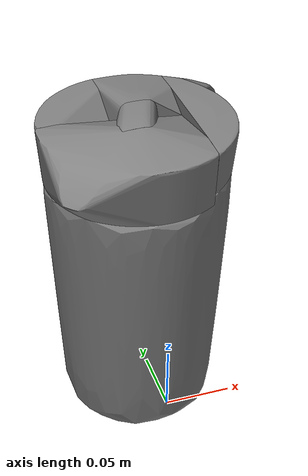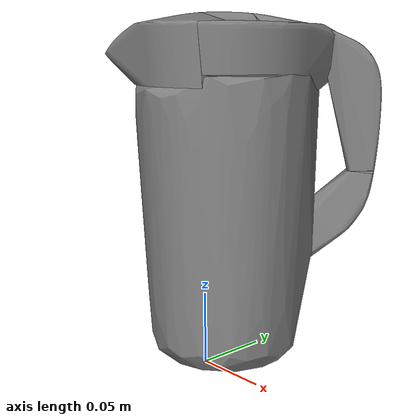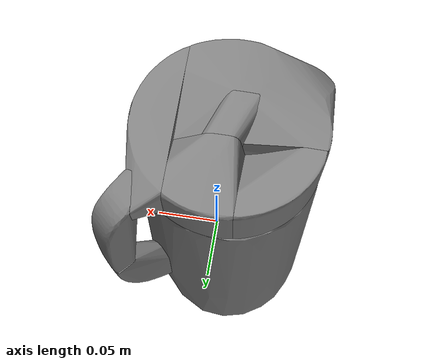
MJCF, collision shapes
<mujoco model="ycb_019_pitcher_base">
  <compiler meshdir="meshes" texturedir="meshes" angle="radian"/>
  <default>
    <default class="visual"><geom contype="0" conaffinity="0" group="2" density="0"/></default>
    <default class="collision"><geom group="3"/></default>
  </default>
  <asset>
    <texture name="ycb_019_pitcher_base_tex" type="2d" file="ycb_019_pitcher_base_texture.png"/>
    <material name="ycb_019_pitcher_base_mat" texture="ycb_019_pitcher_base_tex" specular="0.2" shininess="0.3"/>
    <mesh name="ycb_019_pitcher_base_visual" file="ycb_019_pitcher_base_visual.obj"/>
    <mesh name="ycb_019_pitcher_base_hull0" file="ycb_019_pitcher_base_hull0.obj"/>
    <mesh name="ycb_019_pitcher_base_hull1" file="ycb_019_pitcher_base_hull1.obj"/>
    <mesh name="ycb_019_pitcher_base_hull2" file="ycb_019_pitcher_base_hull2.obj"/>
    <mesh name="ycb_019_pitcher_base_hull3" file="ycb_019_pitcher_base_hull3.obj"/>
    <mesh name="ycb_019_pitcher_base_hull4" file="ycb_019_pitcher_base_hull4.obj"/>
    <mesh name="ycb_019_pitcher_base_hull5" file="ycb_019_pitcher_base_hull5.obj"/>
    <mesh name="ycb_019_pitcher_base_hull6" file="ycb_019_pitcher_base_hull6.obj"/>
    <mesh name="ycb_019_pitcher_base_hull7" file="ycb_019_pitcher_base_hull7.obj"/>
  </asset>
  <worldbody>
    <body name="object" pos="0 0 0">
      <freejoint name="object_free"/>
      <geom type="mesh" mesh="ycb_019_pitcher_base_visual" material="ycb_019_pitcher_base_mat" class="visual"/>
      <geom type="mesh" mesh="ycb_019_pitcher_base_hull0" class="collision"/>
      <geom type="mesh" mesh="ycb_019_pitcher_base_hull1" class="collision"/>
      <geom type="mesh" mesh="ycb_019_pitcher_base_hull2" class="collision"/>
      <geom type="mesh" mesh="ycb_019_pitcher_base_hull3" class="collision"/>
      <geom type="mesh" mesh="ycb_019_pitcher_base_hull4" class="collision"/>
      <geom type="mesh" mesh="ycb_019_pitcher_base_hull5" class="collision"/>
      <geom type="mesh" mesh="ycb_019_pitcher_base_hull6" class="collision"/>
      <geom type="mesh" mesh="ycb_019_pitcher_base_hull7" class="collision"/>
    </body>
  </worldbody>
</mujoco>
